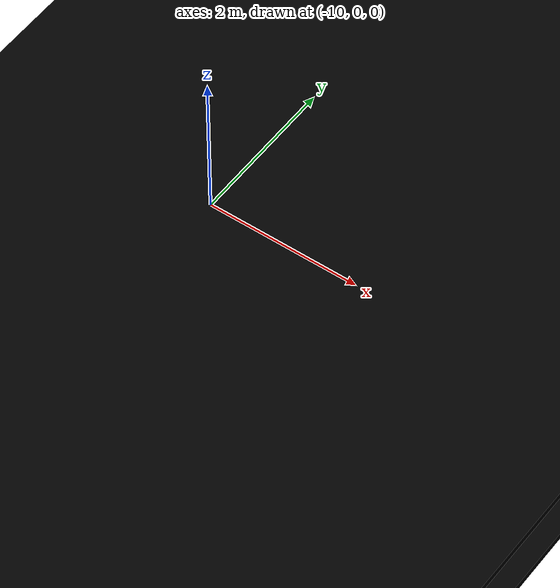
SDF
<sdf version="1.4">
 <world name="default">
  <light name="sun" type="directional">
   <pose>0 0 10 0 -0 0</pose>
   <diffuse>1.0 1.0 1.0 1</diffuse>
   <specular>0.2 0.2 0.2 1</specular>
   <attenuation>
    <range>1000</range>
    <constant>0.9</constant>
    <linear>0.01</linear>
    <quadratic>0.001</quadratic>
   </attenuation>
   <direction>-0.5 -0.5 -1.0</direction>
  </light>
  <include><uri>model://surface</uri><pose>0 0 -0.835  0 0 0</pose></include>
  <include><uri>model://ramp_groundplane</uri><pose>-3 0 0  0 0 0</pose></include>
  <include><uri>model://basic_ramp</uri><pose>-8.817 0 -0.516  0 -0.55 0</pose></include>
  <physics type="ode">
   <max_step_size>0.001</max_step_size>
   <real_time_factor>1</real_time_factor>
   <real_time_update_rate>1000</real_time_update_rate>
   <gravity>0 0 -9.8</gravity>
  </physics>
  <scene>
   <ambient>1 1 1 1</ambient>
   <background>1 1 1 1</background>
   <shadows>1</shadows>
   <sky><clouds><speed>12</speed></clouds></sky>
  </scene>
  <spherical_coordinates>
   <surface_model>EARTH_WGS84</surface_model>
   <latitude_deg>0</latitude_deg>
   <longitude_deg>0</longitude_deg>
   <elevation>0</elevation>
   <heading_deg>0</heading_deg>
  </spherical_coordinates>
 </world>
</sdf>

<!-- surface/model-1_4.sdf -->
<sdf version="1.4">
  <model name="black_ice_lower_friction">
    <static>true</static>
    <link name="link">
      <collision name="collision">
        <geometry>
          <box>
            <size>200 200 0.1</size>
          </box>
        </geometry>
        <surface>
          <friction>
            <ode>
              <mu>1</mu>
              <mu2>1</mu2>
            </ode>
          </friction>
        </surface>
      </collision>
      <visual name="visual_1">
        <pose>0 0 0 0 0 0</pose>
        <cast_shadows>false</cast_shadows>
        <geometry>
          <box>
            <size>200 200 0.1</size>
          </box>
        </geometry>
        <material>
          <ambient>109 112 113 1</ambient>
          <diffuse>0 0 0 1</diffuse>
          <specular>0 0 0 0</specular>
          <emissive>0 0 0 1</emissive>
        </material>
      </visual>
    </link>
  </model>
</sdf>

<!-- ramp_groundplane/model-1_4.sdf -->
<sdf version="1.4">
  <model name="ramp_groundplane">
    <static>true</static>
    <link name="link">
      <collision name="collision">
        <geometry>
          <box>
            <size>30 30 0.1</size>
          </box>
        </geometry>
        <surface>
          <friction>
            <ode>
              <mu>1</mu>
              <mu2>1</mu2>
            </ode>
          </friction>
        </surface>
      </collision>
      <visual name="visual_1">
        <pose>0 0 0 0 0 0</pose>
        <cast_shadows>false</cast_shadows>
        <geometry>
          <box>
            <size>30 30 0.1</size>
          </box>
        </geometry>
        <material>
          <ambient>137 179 194 1</ambient>
          <diffuse>0 0 0 1</diffuse>
          <specular>0 0 0 0</specular>
          <emissive>0 0 0 1</emissive>
        </material>
      </visual>
    </link>
  </model>
</sdf>

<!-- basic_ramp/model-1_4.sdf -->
<sdf version="1.4">
  <model name="basic_ramp">
    <static>true</static>
    <link name="link">
      <collision name="collision">
        <geometry>
          <box>
            <size>2 7.5 0.1</size>
          </box>
        </geometry>
        <surface>
          <friction>
            <ode>
              <mu>1</mu>
              <mu2>1</mu2>
              <fdir1>0.000000 0.000000 0.000000</fdir1>
              <slip1>0.000000</slip1>
              <slip2>0.000000</slip2>
            </ode>
          </friction>
          <bounce>
            <restitution_coefficient>0.000000</restitution_coefficient>
            <threshold>100000.000000</threshold>
          </bounce>
          <contact>
            <ode>
              <soft_cfm>0.000000</soft_cfm>
              <soft_erp>0.200000</soft_erp>
              <kp>100000.000000</kp>
              <kd>1.000000</kd>
              <max_vel>100.000000</max_vel>
              <min_depth>0.001000</min_depth>
            </ode>
          </contact>
        </surface>
      </collision>
      <visual name="visual_1">
        <pose>0 0 0  0 0 0</pose>
        <cast_shadows>true</cast_shadows>
        <geometry>
          <box>
            <size>2 7.5 0.1</size>
          </box>
        </geometry>
        <material>
          <ambient>0.8 0.8 0.8 1</ambient>
          <diffuse>0 0 0 1</diffuse>
          <specular>0 0 0 0</specular>
          <emissive>0 0 0 1</emissive>
        </material>
      </visual>
    </link>
  </model>
</sdf>
